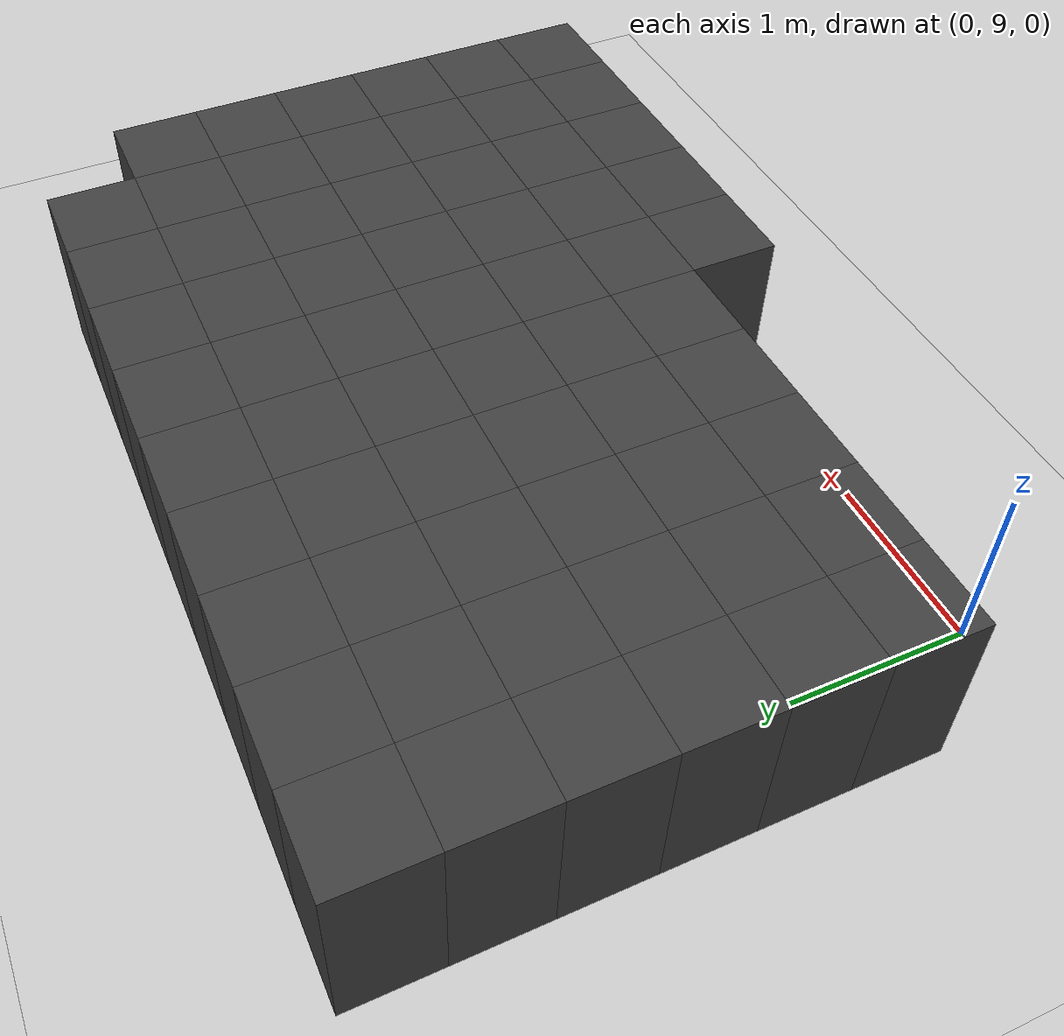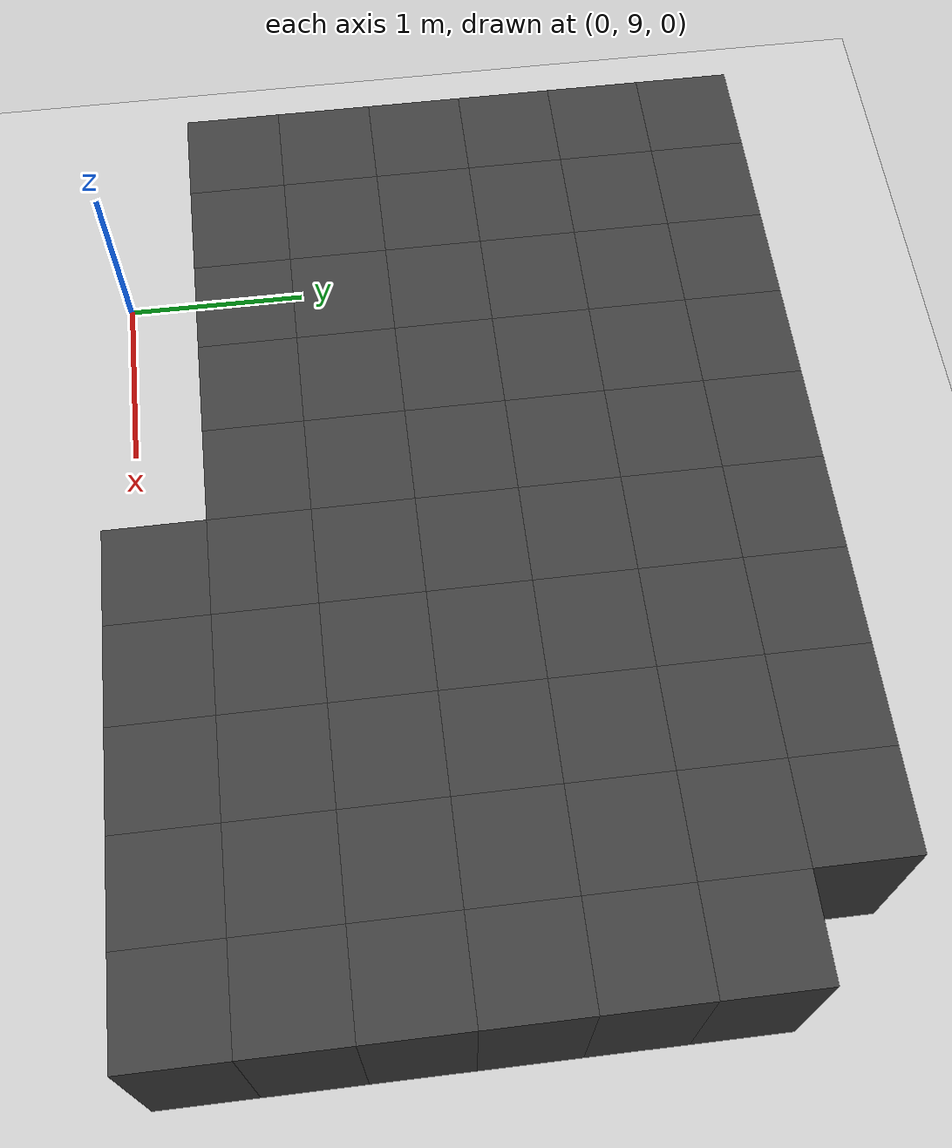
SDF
<sdf version="1.7">
 <world name="map_11515">
  <model name="ground_plane">
   <static>true</static>
   <link name="link">
    <collision name="collision">
     <geometry><plane><normal>0 0 1</normal><size>200 200</size></plane></geometry>
    </collision>
    <visual name="visual">
     <geometry><plane><normal>0 0 1</normal><size>200 200</size></plane></geometry>
     <material><ambient>0.8 0.8 0.8 1</ambient><diffuse>0.8 0.8 0.8 1</diffuse></material>
    </visual>
   </link>
  </model>
  <model name="maze_environment">
   <static>true</static>
   <link name="wall_24">
    <pose>-0.250 12.250 0.500 0 0 0</pose>
    <collision name="col"><geometry><box><size>0.5 0.5 1.0</size></box></geometry></collision>
    <visual name="vis">
     <geometry><box><size>0.5 0.5 1.0</size></box></geometry>
     <material><ambient>0.15 0.15 0.15 1</ambient><diffuse>0.25 0.25 0.25 1</diffuse></material>
    </visual>
   </link>
   <link name="wall_25">
    <pose>0.250 12.250 0.500 0 0 0</pose>
    <collision name="col"><geometry><box><size>0.5 0.5 1.0</size></box></geometry></collision>
    <visual name="vis">
     <geometry><box><size>0.5 0.5 1.0</size></box></geometry>
     <material><ambient>0.15 0.15 0.15 1</ambient><diffuse>0.25 0.25 0.25 1</diffuse></material>
    </visual>
   </link>
   <link name="wall_26">
    <pose>0.750 12.250 0.500 0 0 0</pose>
    <collision name="col"><geometry><box><size>0.5 0.5 1.0</size></box></geometry></collision>
    <visual name="vis">
     <geometry><box><size>0.5 0.5 1.0</size></box></geometry>
     <material><ambient>0.15 0.15 0.15 1</ambient><diffuse>0.25 0.25 0.25 1</diffuse></material>
    </visual>
   </link>
   <link name="wall_27">
    <pose>1.250 12.250 0.500 0 0 0</pose>
    <collision name="col"><geometry><box><size>0.5 0.5 1.0</size></box></geometry></collision>
    <visual name="vis">
     <geometry><box><size>0.5 0.5 1.0</size></box></geometry>
     <material><ambient>0.15 0.15 0.15 1</ambient><diffuse>0.25 0.25 0.25 1</diffuse></material>
    </visual>
   </link>
   <link name="wall_28">
    <pose>1.750 12.250 0.500 0 0 0</pose>
    <collision name="col"><geometry><box><size>0.5 0.5 1.0</size></box></geometry></collision>
    <visual name="vis">
     <geometry><box><size>0.5 0.5 1.0</size></box></geometry>
     <material><ambient>0.15 0.15 0.15 1</ambient><diffuse>0.25 0.25 0.25 1</diffuse></material>
    </visual>
   </link>
   <link name="wall_29">
    <pose>2.250 12.250 0.500 0 0 0</pose>
    <collision name="col"><geometry><box><size>0.5 0.5 1.0</size></box></geometry></collision>
    <visual name="vis">
     <geometry><box><size>0.5 0.5 1.0</size></box></geometry>
     <material><ambient>0.15 0.15 0.15 1</ambient><diffuse>0.25 0.25 0.25 1</diffuse></material>
    </visual>
   </link>
   <link name="wall_30">
    <pose>2.750 12.250 0.500 0 0 0</pose>
    <collision name="col"><geometry><box><size>0.5 0.5 1.0</size></box></geometry></collision>
    <visual name="vis">
     <geometry><box><size>0.5 0.5 1.0</size></box></geometry>
     <material><ambient>0.15 0.15 0.15 1</ambient><diffuse>0.25 0.25 0.25 1</diffuse></material>
    </visual>
   </link>
   <link name="wall_31">
    <pose>3.250 12.250 0.500 0 0 0</pose>
    <collision name="col"><geometry><box><size>0.5 0.5 1.0</size></box></geometry></collision>
    <visual name="vis">
     <geometry><box><size>0.5 0.5 1.0</size></box></geometry>
     <material><ambient>0.15 0.15 0.15 1</ambient><diffuse>0.25 0.25 0.25 1</diffuse></material>
    </visual>
   </link>
   <link name="wall_32">
    <pose>3.750 12.250 0.500 0 0 0</pose>
    <collision name="col"><geometry><box><size>0.5 0.5 1.0</size></box></geometry></collision>
    <visual name="vis">
     <geometry><box><size>0.5 0.5 1.0</size></box></geometry>
     <material><ambient>0.15 0.15 0.15 1</ambient><diffuse>0.25 0.25 0.25 1</diffuse></material>
    </visual>
   </link>
   <link name="wall_71">
    <pose>-0.250 11.750 0.500 0 0 0</pose>
    <collision name="col"><geometry><box><size>0.5 0.5 1.0</size></box></geometry></collision>
    <visual name="vis">
     <geometry><box><size>0.5 0.5 1.0</size></box></geometry>
     <material><ambient>0.15 0.15 0.15 1</ambient><diffuse>0.25 0.25 0.25 1</diffuse></material>
    </visual>
   </link>
   <link name="wall_72">
    <pose>0.250 11.750 0.500 0 0 0</pose>
    <collision name="col"><geometry><box><size>0.5 0.5 1.0</size></box></geometry></collision>
    <visual name="vis">
     <geometry><box><size>0.5 0.5 1.0</size></box></geometry>
     <material><ambient>0.15 0.15 0.15 1</ambient><diffuse>0.25 0.25 0.25 1</diffuse></material>
    </visual>
   </link>
   <link name="wall_73">
    <pose>0.750 11.750 0.500 0 0 0</pose>
    <collision name="col"><geometry><box><size>0.5 0.5 1.0</size></box></geometry></collision>
    <visual name="vis">
     <geometry><box><size>0.5 0.5 1.0</size></box></geometry>
     <material><ambient>0.15 0.15 0.15 1</ambient><diffuse>0.25 0.25 0.25 1</diffuse></material>
    </visual>
   </link>
   <link name="wall_74">
    <pose>1.250 11.750 0.500 0 0 0</pose>
    <collision name="col"><geometry><box><size>0.5 0.5 1.0</size></box></geometry></collision>
    <visual name="vis">
     <geometry><box><size>0.5 0.5 1.0</size></box></geometry>
     <material><ambient>0.15 0.15 0.15 1</ambient><diffuse>0.25 0.25 0.25 1</diffuse></material>
    </visual>
   </link>
   <link name="wall_75">
    <pose>1.750 11.750 0.500 0 0 0</pose>
    <collision name="col"><geometry><box><size>0.5 0.5 1.0</size></box></geometry></collision>
    <visual name="vis">
     <geometry><box><size>0.5 0.5 1.0</size></box></geometry>
     <material><ambient>0.15 0.15 0.15 1</ambient><diffuse>0.25 0.25 0.25 1</diffuse></material>
    </visual>
   </link>
   <link name="wall_76">
    <pose>2.250 11.750 0.500 0 0 0</pose>
    <collision name="col"><geometry><box><size>0.5 0.5 1.0</size></box></geometry></collision>
    <visual name="vis">
     <geometry><box><size>0.5 0.5 1.0</size></box></geometry>
     <material><ambient>0.15 0.15 0.15 1</ambient><diffuse>0.25 0.25 0.25 1</diffuse></material>
    </visual>
   </link>
   <link name="wall_77">
    <pose>2.750 11.750 0.500 0 0 0</pose>
    <collision name="col"><geometry><box><size>0.5 0.5 1.0</size></box></geometry></collision>
    <visual name="vis">
     <geometry><box><size>0.5 0.5 1.0</size></box></geometry>
     <material><ambient>0.15 0.15 0.15 1</ambient><diffuse>0.25 0.25 0.25 1</diffuse></material>
    </visual>
   </link>
   <link name="wall_78">
    <pose>3.250 11.750 0.500 0 0 0</pose>
    <collision name="col"><geometry><box><size>0.5 0.5 1.0</size></box></geometry></collision>
    <visual name="vis">
     <geometry><box><size>0.5 0.5 1.0</size></box></geometry>
     <material><ambient>0.15 0.15 0.15 1</ambient><diffuse>0.25 0.25 0.25 1</diffuse></material>
    </visual>
   </link>
   <link name="wall_79">
    <pose>3.750 11.750 0.500 0 0 0</pose>
    <collision name="col"><geometry><box><size>0.5 0.5 1.0</size></box></geometry></collision>
    <visual name="vis">
     <geometry><box><size>0.5 0.5 1.0</size></box></geometry>
     <material><ambient>0.15 0.15 0.15 1</ambient><diffuse>0.25 0.25 0.25 1</diffuse></material>
    </visual>
   </link>
   <link name="wall_80">
    <pose>4.250 11.750 0.500 0 0 0</pose>
    <collision name="col"><geometry><box><size>0.5 0.5 1.0</size></box></geometry></collision>
    <visual name="vis">
     <geometry><box><size>0.5 0.5 1.0</size></box></geometry>
     <material><ambient>0.15 0.15 0.15 1</ambient><diffuse>0.25 0.25 0.25 1</diffuse></material>
    </visual>
   </link>
   <link name="wall_118">
    <pose>-0.250 11.250 0.500 0 0 0</pose>
    <collision name="col"><geometry><box><size>0.5 0.5 1.0</size></box></geometry></collision>
    <visual name="vis">
     <geometry><box><size>0.5 0.5 1.0</size></box></geometry>
     <material><ambient>0.15 0.15 0.15 1</ambient><diffuse>0.25 0.25 0.25 1</diffuse></material>
    </visual>
   </link>
   <link name="wall_119">
    <pose>0.250 11.250 0.500 0 0 0</pose>
    <collision name="col"><geometry><box><size>0.5 0.5 1.0</size></box></geometry></collision>
    <visual name="vis">
     <geometry><box><size>0.5 0.5 1.0</size></box></geometry>
     <material><ambient>0.15 0.15 0.15 1</ambient><diffuse>0.25 0.25 0.25 1</diffuse></material>
    </visual>
   </link>
   <link name="wall_120">
    <pose>0.750 11.250 0.500 0 0 0</pose>
    <collision name="col"><geometry><box><size>0.5 0.5 1.0</size></box></geometry></collision>
    <visual name="vis">
     <geometry><box><size>0.5 0.5 1.0</size></box></geometry>
     <material><ambient>0.15 0.15 0.15 1</ambient><diffuse>0.25 0.25 0.25 1</diffuse></material>
    </visual>
   </link>
   <link name="wall_121">
    <pose>1.250 11.250 0.500 0 0 0</pose>
    <collision name="col"><geometry><box><size>0.5 0.5 1.0</size></box></geometry></collision>
    <visual name="vis">
     <geometry><box><size>0.5 0.5 1.0</size></box></geometry>
     <material><ambient>0.15 0.15 0.15 1</ambient><diffuse>0.25 0.25 0.25 1</diffuse></material>
    </visual>
   </link>
   <link name="wall_122">
    <pose>1.750 11.250 0.500 0 0 0</pose>
    <collision name="col"><geometry><box><size>0.5 0.5 1.0</size></box></geometry></collision>
    <visual name="vis">
     <geometry><box><size>0.5 0.5 1.0</size></box></geometry>
     <material><ambient>0.15 0.15 0.15 1</ambient><diffuse>0.25 0.25 0.25 1</diffuse></material>
    </visual>
   </link>
   <link name="wall_123">
    <pose>2.250 11.250 0.500 0 0 0</pose>
    <collision name="col"><geometry><box><size>0.5 0.5 1.0</size></box></geometry></collision>
    <visual name="vis">
     <geometry><box><size>0.5 0.5 1.0</size></box></geometry>
     <material><ambient>0.15 0.15 0.15 1</ambient><diffuse>0.25 0.25 0.25 1</diffuse></material>
    </visual>
   </link>
   <link name="wall_124">
    <pose>2.750 11.250 0.500 0 0 0</pose>
    <collision name="col"><geometry><box><size>0.5 0.5 1.0</size></box></geometry></collision>
    <visual name="vis">
     <geometry><box><size>0.5 0.5 1.0</size></box></geometry>
     <material><ambient>0.15 0.15 0.15 1</ambient><diffuse>0.25 0.25 0.25 1</diffuse></material>
    </visual>
   </link>
   <link name="wall_125">
    <pose>3.250 11.250 0.500 0 0 0</pose>
    <collision name="col"><geometry><box><size>0.5 0.5 1.0</size></box></geometry></collision>
    <visual name="vis">
     <geometry><box><size>0.5 0.5 1.0</size></box></geometry>
     <material><ambient>0.15 0.15 0.15 1</ambient><diffuse>0.25 0.25 0.25 1</diffuse></material>
    </visual>
   </link>
   <link name="wall_126">
    <pose>3.750 11.250 0.500 0 0 0</pose>
    <collision name="col"><geometry><box><size>0.5 0.5 1.0</size></box></geometry></collision>
    <visual name="vis">
     <geometry><box><size>0.5 0.5 1.0</size></box></geometry>
     <material><ambient>0.15 0.15 0.15 1</ambient><diffuse>0.25 0.25 0.25 1</diffuse></material>
    </visual>
   </link>
   <link name="wall_127">
    <pose>4.250 11.250 0.500 0 0 0</pose>
    <collision name="col"><geometry><box><size>0.5 0.5 1.0</size></box></geometry></collision>
    <visual name="vis">
     <geometry><box><size>0.5 0.5 1.0</size></box></geometry>
     <material><ambient>0.15 0.15 0.15 1</ambient><diffuse>0.25 0.25 0.25 1</diffuse></material>
    </visual>
   </link>
   <link name="wall_165">
    <pose>-0.250 10.750 0.500 0 0 0</pose>
    <collision name="col"><geometry><box><size>0.5 0.5 1.0</size></box></geometry></collision>
    <visual name="vis">
     <geometry><box><size>0.5 0.5 1.0</size></box></geometry>
     <material><ambient>0.15 0.15 0.15 1</ambient><diffuse>0.25 0.25 0.25 1</diffuse></material>
    </visual>
   </link>
   <link name="wall_166">
    <pose>0.250 10.750 0.500 0 0 0</pose>
    <collision name="col"><geometry><box><size>0.5 0.5 1.0</size></box></geometry></collision>
    <visual name="vis">
     <geometry><box><size>0.5 0.5 1.0</size></box></geometry>
     <material><ambient>0.15 0.15 0.15 1</ambient><diffuse>0.25 0.25 0.25 1</diffuse></material>
    </visual>
   </link>
   <link name="wall_167">
    <pose>0.750 10.750 0.500 0 0 0</pose>
    <collision name="col"><geometry><box><size>0.5 0.5 1.0</size></box></geometry></collision>
    <visual name="vis">
     <geometry><box><size>0.5 0.5 1.0</size></box></geometry>
     <material><ambient>0.15 0.15 0.15 1</ambient><diffuse>0.25 0.25 0.25 1</diffuse></material>
    </visual>
   </link>
   <link name="wall_168">
    <pose>1.250 10.750 0.500 0 0 0</pose>
    <collision name="col"><geometry><box><size>0.5 0.5 1.0</size></box></geometry></collision>
    <visual name="vis">
     <geometry><box><size>0.5 0.5 1.0</size></box></geometry>
     <material><ambient>0.15 0.15 0.15 1</ambient><diffuse>0.25 0.25 0.25 1</diffuse></material>
    </visual>
   </link>
   <link name="wall_169">
    <pose>1.750 10.750 0.500 0 0 0</pose>
    <collision name="col"><geometry><box><size>0.5 0.5 1.0</size></box></geometry></collision>
    <visual name="vis">
     <geometry><box><size>0.5 0.5 1.0</size></box></geometry>
     <material><ambient>0.15 0.15 0.15 1</ambient><diffuse>0.25 0.25 0.25 1</diffuse></material>
    </visual>
   </link>
   <link name="wall_170">
    <pose>2.250 10.750 0.500 0 0 0</pose>
    <collision name="col"><geometry><box><size>0.5 0.5 1.0</size></box></geometry></collision>
    <visual name="vis">
     <geometry><box><size>0.5 0.5 1.0</size></box></geometry>
     <material><ambient>0.15 0.15 0.15 1</ambient><diffuse>0.25 0.25 0.25 1</diffuse></material>
    </visual>
   </link>
   <link name="wall_171">
    <pose>2.750 10.750 0.500 0 0 0</pose>
    <collision name="col"><geometry><box><size>0.5 0.5 1.0</size></box></geometry></collision>
    <visual name="vis">
     <geometry><box><size>0.5 0.5 1.0</size></box></geometry>
     <material><ambient>0.15 0.15 0.15 1</ambient><diffuse>0.25 0.25 0.25 1</diffuse></material>
    </visual>
   </link>
   <link name="wall_172">
    <pose>3.250 10.750 0.500 0 0 0</pose>
    <collision name="col"><geometry><box><size>0.5 0.5 1.0</size></box></geometry></collision>
    <visual name="vis">
     <geometry><box><size>0.5 0.5 1.0</size></box></geometry>
     <material><ambient>0.15 0.15 0.15 1</ambient><diffuse>0.25 0.25 0.25 1</diffuse></material>
    </visual>
   </link>
   <link name="wall_173">
    <pose>3.750 10.750 0.500 0 0 0</pose>
    <collision name="col"><geometry><box><size>0.5 0.5 1.0</size></box></geometry></collision>
    <visual name="vis">
     <geometry><box><size>0.5 0.5 1.0</size></box></geometry>
     <material><ambient>0.15 0.15 0.15 1</ambient><diffuse>0.25 0.25 0.25 1</diffuse></material>
    </visual>
   </link>
   <link name="wall_174">
    <pose>4.250 10.750 0.500 0 0 0</pose>
    <collision name="col"><geometry><box><size>0.5 0.5 1.0</size></box></geometry></collision>
    <visual name="vis">
     <geometry><box><size>0.5 0.5 1.0</size></box></geometry>
     <material><ambient>0.15 0.15 0.15 1</ambient><diffuse>0.25 0.25 0.25 1</diffuse></material>
    </visual>
   </link>
   <link name="wall_214">
    <pose>-0.250 10.250 0.500 0 0 0</pose>
    <collision name="col"><geometry><box><size>0.5 0.5 1.0</size></box></geometry></collision>
    <visual name="vis">
     <geometry><box><size>0.5 0.5 1.0</size></box></geometry>
     <material><ambient>0.15 0.15 0.15 1</ambient><diffuse>0.25 0.25 0.25 1</diffuse></material>
    </visual>
   </link>
   <link name="wall_215">
    <pose>0.250 10.250 0.500 0 0 0</pose>
    <collision name="col"><geometry><box><size>0.5 0.5 1.0</size></box></geometry></collision>
    <visual name="vis">
     <geometry><box><size>0.5 0.5 1.0</size></box></geometry>
     <material><ambient>0.15 0.15 0.15 1</ambient><diffuse>0.25 0.25 0.25 1</diffuse></material>
    </visual>
   </link>
   <link name="wall_216">
    <pose>0.750 10.250 0.500 0 0 0</pose>
    <collision name="col"><geometry><box><size>0.5 0.5 1.0</size></box></geometry></collision>
    <visual name="vis">
     <geometry><box><size>0.5 0.5 1.0</size></box></geometry>
     <material><ambient>0.15 0.15 0.15 1</ambient><diffuse>0.25 0.25 0.25 1</diffuse></material>
    </visual>
   </link>
   <link name="wall_217">
    <pose>1.250 10.250 0.500 0 0 0</pose>
    <collision name="col"><geometry><box><size>0.5 0.5 1.0</size></box></geometry></collision>
    <visual name="vis">
     <geometry><box><size>0.5 0.5 1.0</size></box></geometry>
     <material><ambient>0.15 0.15 0.15 1</ambient><diffuse>0.25 0.25 0.25 1</diffuse></material>
    </visual>
   </link>
   <link name="wall_218">
    <pose>1.750 10.250 0.500 0 0 0</pose>
    <collision name="col"><geometry><box><size>0.5 0.5 1.0</size></box></geometry></collision>
    <visual name="vis">
     <geometry><box><size>0.5 0.5 1.0</size></box></geometry>
     <material><ambient>0.15 0.15 0.15 1</ambient><diffuse>0.25 0.25 0.25 1</diffuse></material>
    </visual>
   </link>
   <link name="wall_219">
    <pose>2.250 10.250 0.500 0 0 0</pose>
    <collision name="col"><geometry><box><size>0.5 0.5 1.0</size></box></geometry></collision>
    <visual name="vis">
     <geometry><box><size>0.5 0.5 1.0</size></box></geometry>
     <material><ambient>0.15 0.15 0.15 1</ambient><diffuse>0.25 0.25 0.25 1</diffuse></material>
    </visual>
   </link>
   <link name="wall_220">
    <pose>2.750 10.250 0.500 0 0 0</pose>
    <collision name="col"><geometry><box><size>0.5 0.5 1.0</size></box></geometry></collision>
    <visual name="vis">
     <geometry><box><size>0.5 0.5 1.0</size></box></geometry>
     <material><ambient>0.15 0.15 0.15 1</ambient><diffuse>0.25 0.25 0.25 1</diffuse></material>
    </visual>
   </link>
   <link name="wall_221">
    <pose>3.250 10.250 0.500 0 0 0</pose>
    <collision name="col"><geometry><box><size>0.5 0.5 1.0</size></box></geometry></collision>
    <visual name="vis">
     <geometry><box><size>0.5 0.5 1.0</size></box></geometry>
     <material><ambient>0.15 0.15 0.15 1</ambient><diffuse>0.25 0.25 0.25 1</diffuse></material>
    </visual>
   </link>
   <link name="wall_222">
    <pose>3.750 10.250 0.500 0 0 0</pose>
    <collision name="col"><geometry><box><size>0.5 0.5 1.0</size></box></geometry></collision>
    <visual name="vis">
     <geometry><box><size>0.5 0.5 1.0</size></box></geometry>
     <material><ambient>0.15 0.15 0.15 1</ambient><diffuse>0.25 0.25 0.25 1</diffuse></material>
    </visual>
   </link>
   <link name="wall_223">
    <pose>4.250 10.250 0.500 0 0 0</pose>
    <collision name="col"><geometry><box><size>0.5 0.5 1.0</size></box></geometry></collision>
    <visual name="vis">
     <geometry><box><size>0.5 0.5 1.0</size></box></geometry>
     <material><ambient>0.15 0.15 0.15 1</ambient><diffuse>0.25 0.25 0.25 1</diffuse></material>
    </visual>
   </link>
   <link name="wall_257">
    <pose>-0.250 9.750 0.500 0 0 0</pose>
    <collision name="col"><geometry><box><size>0.5 0.5 1.0</size></box></geometry></collision>
    <visual name="vis">
     <geometry><box><size>0.5 0.5 1.0</size></box></geometry>
     <material><ambient>0.15 0.15 0.15 1</ambient><diffuse>0.25 0.25 0.25 1</diffuse></material>
    </visual>
   </link>
   <link name="wall_258">
    <pose>0.250 9.750 0.500 0 0 0</pose>
    <collision name="col"><geometry><box><size>0.5 0.5 1.0</size></box></geometry></collision>
    <visual name="vis">
     <geometry><box><size>0.5 0.5 1.0</size></box></geometry>
     <material><ambient>0.15 0.15 0.15 1</ambient><diffuse>0.25 0.25 0.25 1</diffuse></material>
    </visual>
   </link>
   <link name="wall_259">
    <pose>0.750 9.750 0.500 0 0 0</pose>
    <collision name="col"><geometry><box><size>0.5 0.5 1.0</size></box></geometry></collision>
    <visual name="vis">
     <geometry><box><size>0.5 0.5 1.0</size></box></geometry>
     <material><ambient>0.15 0.15 0.15 1</ambient><diffuse>0.25 0.25 0.25 1</diffuse></material>
    </visual>
   </link>
   <link name="wall_260">
    <pose>1.250 9.750 0.500 0 0 0</pose>
    <collision name="col"><geometry><box><size>0.5 0.5 1.0</size></box></geometry></collision>
    <visual name="vis">
     <geometry><box><size>0.5 0.5 1.0</size></box></geometry>
     <material><ambient>0.15 0.15 0.15 1</ambient><diffuse>0.25 0.25 0.25 1</diffuse></material>
    </visual>
   </link>
   <link name="wall_261">
    <pose>1.750 9.750 0.500 0 0 0</pose>
    <collision name="col"><geometry><box><size>0.5 0.5 1.0</size></box></geometry></collision>
    <visual name="vis">
     <geometry><box><size>0.5 0.5 1.0</size></box></geometry>
     <material><ambient>0.15 0.15 0.15 1</ambient><diffuse>0.25 0.25 0.25 1</diffuse></material>
    </visual>
   </link>
   <link name="wall_262">
    <pose>2.250 9.750 0.500 0 0 0</pose>
    <collision name="col"><geometry><box><size>0.5 0.5 1.0</size></box></geometry></collision>
    <visual name="vis">
     <geometry><box><size>0.5 0.5 1.0</size></box></geometry>
     <material><ambient>0.15 0.15 0.15 1</ambient><diffuse>0.25 0.25 0.25 1</diffuse></material>
    </visual>
   </link>
   <link name="wall_263">
    <pose>2.750 9.750 0.500 0 0 0</pose>
    <collision name="col"><geometry><box><size>0.5 0.5 1.0</size></box></geometry></collision>
    <visual name="vis">
     <geometry><box><size>0.5 0.5 1.0</size></box></geometry>
     <material><ambient>0.15 0.15 0.15 1</ambient><diffuse>0.25 0.25 0.25 1</diffuse></material>
    </visual>
   </link>
   <link name="wall_264">
    <pose>3.250 9.750 0.500 0 0 0</pose>
    <collision name="col"><geometry><box><size>0.5 0.5 1.0</size></box></geometry></collision>
    <visual name="vis">
     <geometry><box><size>0.5 0.5 1.0</size></box></geometry>
     <material><ambient>0.15 0.15 0.15 1</ambient><diffuse>0.25 0.25 0.25 1</diffuse></material>
    </visual>
   </link>
   <link name="wall_265">
    <pose>3.750 9.750 0.500 0 0 0</pose>
    <collision name="col"><geometry><box><size>0.5 0.5 1.0</size></box></geometry></collision>
    <visual name="vis">
     <geometry><box><size>0.5 0.5 1.0</size></box></geometry>
     <material><ambient>0.15 0.15 0.15 1</ambient><diffuse>0.25 0.25 0.25 1</diffuse></material>
    </visual>
   </link>
   <link name="wall_266">
    <pose>4.250 9.750 0.500 0 0 0</pose>
    <collision name="col"><geometry><box><size>0.5 0.5 1.0</size></box></geometry></collision>
    <visual name="vis">
     <geometry><box><size>0.5 0.5 1.0</size></box></geometry>
     <material><ambient>0.15 0.15 0.15 1</ambient><diffuse>0.25 0.25 0.25 1</diffuse></material>
    </visual>
   </link>
   <link name="wall_305">
    <pose>2.250 9.250 0.500 0 0 0</pose>
    <collision name="col"><geometry><box><size>0.5 0.5 1.0</size></box></geometry></collision>
    <visual name="vis">
     <geometry><box><size>0.5 0.5 1.0</size></box></geometry>
     <material><ambient>0.15 0.15 0.15 1</ambient><diffuse>0.25 0.25 0.25 1</diffuse></material>
    </visual>
   </link>
   <link name="wall_306">
    <pose>2.750 9.250 0.500 0 0 0</pose>
    <collision name="col"><geometry><box><size>0.5 0.5 1.0</size></box></geometry></collision>
    <visual name="vis">
     <geometry><box><size>0.5 0.5 1.0</size></box></geometry>
     <material><ambient>0.15 0.15 0.15 1</ambient><diffuse>0.25 0.25 0.25 1</diffuse></material>
    </visual>
   </link>
   <link name="wall_307">
    <pose>3.250 9.250 0.500 0 0 0</pose>
    <collision name="col"><geometry><box><size>0.5 0.5 1.0</size></box></geometry></collision>
    <visual name="vis">
     <geometry><box><size>0.5 0.5 1.0</size></box></geometry>
     <material><ambient>0.15 0.15 0.15 1</ambient><diffuse>0.25 0.25 0.25 1</diffuse></material>
    </visual>
   </link>
   <link name="wall_308">
    <pose>3.750 9.250 0.500 0 0 0</pose>
    <collision name="col"><geometry><box><size>0.5 0.5 1.0</size></box></geometry></collision>
    <visual name="vis">
     <geometry><box><size>0.5 0.5 1.0</size></box></geometry>
     <material><ambient>0.15 0.15 0.15 1</ambient><diffuse>0.25 0.25 0.25 1</diffuse></material>
    </visual>
   </link>
   <link name="wall_309">
    <pose>4.250 9.250 0.500 0 0 0</pose>
    <collision name="col"><geometry><box><size>0.5 0.5 1.0</size></box></geometry></collision>
    <visual name="vis">
     <geometry><box><size>0.5 0.5 1.0</size></box></geometry>
     <material><ambient>0.15 0.15 0.15 1</ambient><diffuse>0.25 0.25 0.25 1</diffuse></material>
    </visual>
   </link>
  </model>
 </world>
</sdf>
